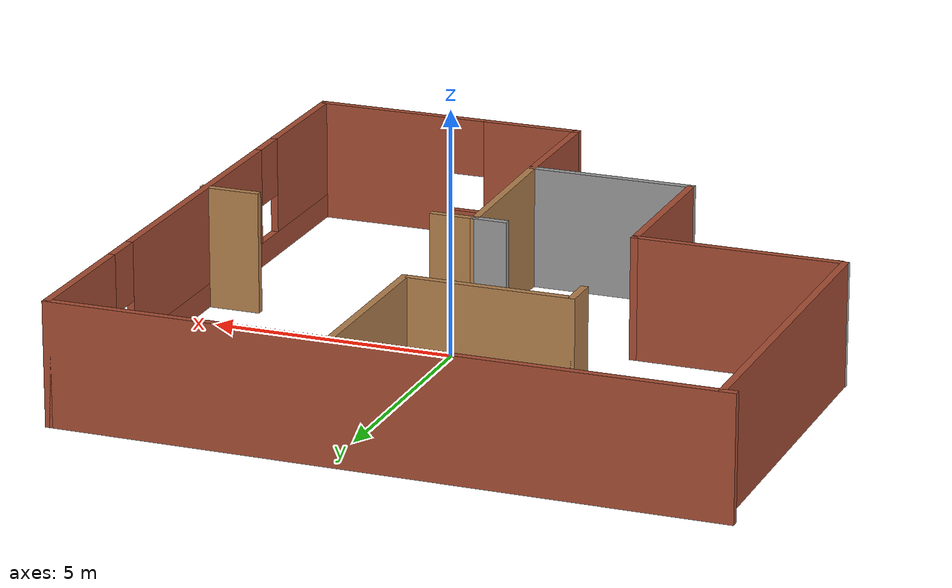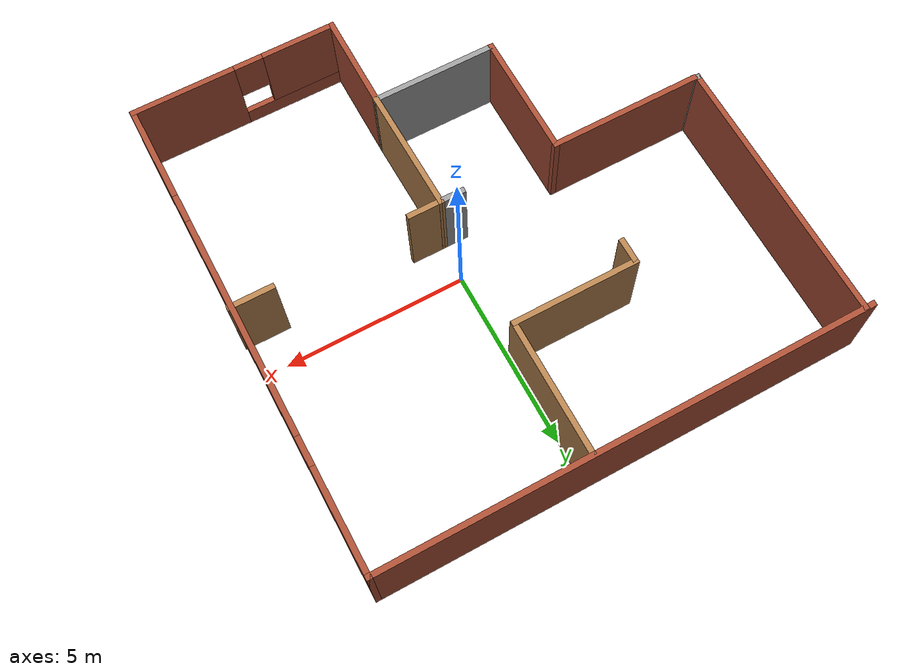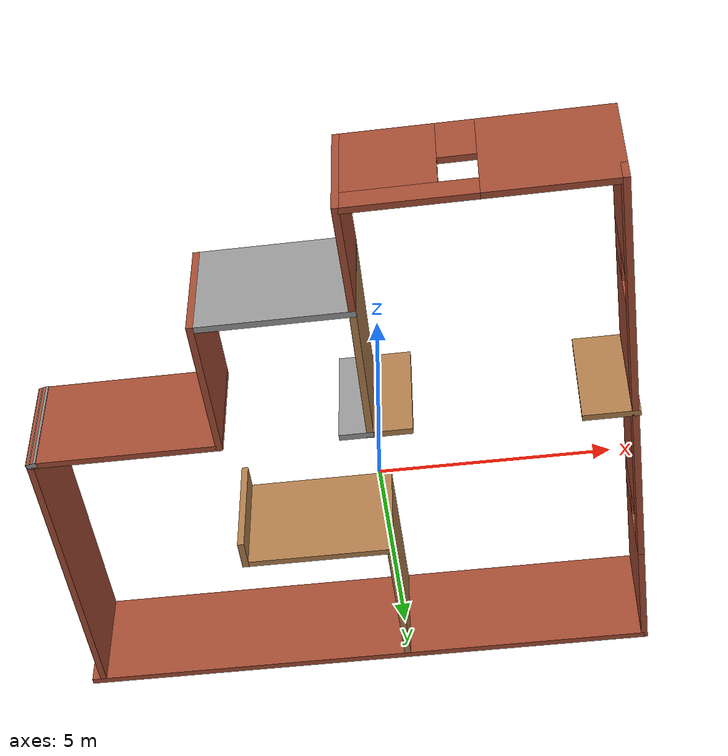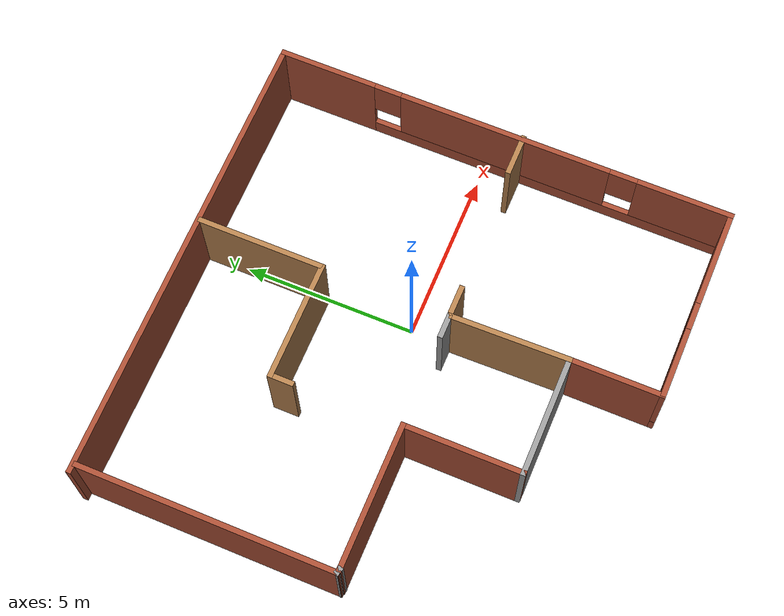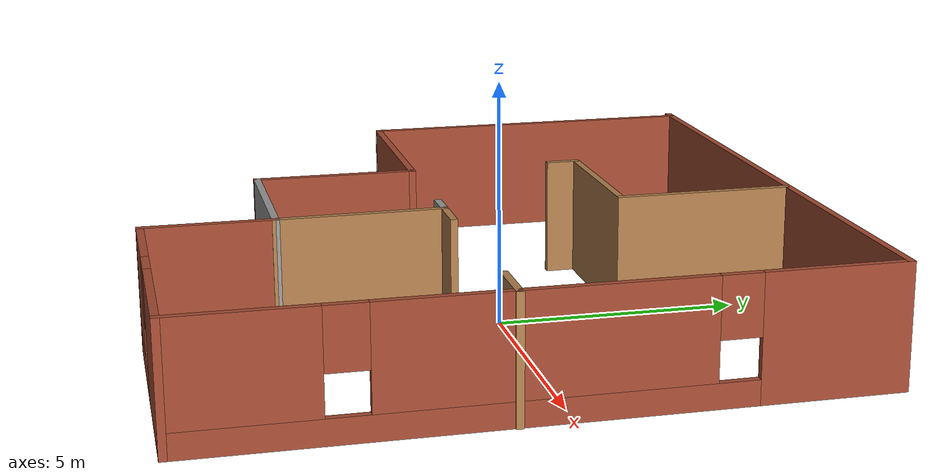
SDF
<?xml version='1.0'?>
<sdf version='1.6'>
  <model name='building'>
    <pose frame=''>-1.0593 -0.419655 0 0 -0 0</pose>
    <link name='Wall_0'>
      <collision name='Wall_0_Collision'>
        <geometry>
          <box>
            <size>13.5 0.15 2.5</size>
          </box>
        </geometry>
        <pose frame=''>0 0 1.25 0 -0 0</pose>
      </collision>
      <visual name='Wall_0_Visual'>
        <pose frame=''>0 0 1.25 0 -0 0</pose>
        <geometry>
          <box>
            <size>13.5 0.15 2.5</size>
          </box>
        </geometry>
        <material>
          <script>
            <uri>file://media/materials/scripts/gazebo.material</uri>
            <name>Gazebo/Bricks</name>
          </script>
          <ambient>1 1 1 1</ambient>
        </material>
        <meta>
          <layer>0</layer>
        </meta>
      </visual>
      <pose frame=''>-0.019646 6.675 0 0 -0 0</pose>
    </link>
    <link name='Wall_1'>
      <pose frame=''>6.65535 0 0 0 -0 -1.5708</pose>
      <visual name='Wall_1_Visual_0'>
        <pose frame=''>-5.30319 0 1.25 0 -0 0</pose>
        <geometry>
          <box>
            <size>2.89362 0.15 2.5</size>
          </box>
        </geometry>
        <material>
          <script>
            <uri>file://media/materials/scripts/gazebo.material</uri>
            <name>Gazebo/Bricks</name>
          </script>
          <ambient>1 1 1 1</ambient>
        </material>
        <meta>
          <layer>0</layer>
        </meta>
      </visual>
      <collision name='Wall_1_Collision_0'>
        <geometry>
          <box>
            <size>2.89362 0.15 2.5</size>
          </box>
        </geometry>
        <pose frame=''>-5.30319 0 1.25 0 -0 0</pose>
      </collision>
      <visual name='Wall_1_Visual_1'>
        <pose frame=''>1.44681 0 0.25 0 -0 0</pose>
        <geometry>
          <box>
            <size>10.6064 0.15 0.5</size>
          </box>
        </geometry>
        <material>
          <script>
            <uri>file://media/materials/scripts/gazebo.material</uri>
            <name>Gazebo/Bricks</name>
          </script>
          <ambient>1 1 1 1</ambient>
        </material>
        <meta>
          <layer>0</layer>
        </meta>
      </visual>
      <collision name='Wall_1_Collision_1'>
        <geometry>
          <box>
            <size>10.6064 0.15 0.5</size>
          </box>
        </geometry>
        <pose frame=''>1.44681 0 0.25 0 -0 0</pose>
      </collision>
      <visual name='Wall_1_Visual_2'>
        <pose frame=''>0.05485 0 1.5 0 -0 0</pose>
        <geometry>
          <box>
            <size>6.22245 0.15 2</size>
          </box>
        </geometry>
        <material>
          <script>
            <uri>file://media/materials/scripts/gazebo.material</uri>
            <name>Gazebo/Bricks</name>
          </script>
          <ambient>1 1 1 1</ambient>
        </material>
        <meta>
          <layer>0</layer>
        </meta>
      </visual>
      <collision name='Wall_1_Collision_2'>
        <geometry>
          <box>
            <size>6.22245 0.15 2</size>
          </box>
        </geometry>
        <pose frame=''>0.05485 0 1.5 0 -0 0</pose>
      </collision>
      <visual name='Wall_1_Visual_3'>
        <pose frame=''>5.35804 0 1.5 0 -0 0</pose>
        <geometry>
          <box>
            <size>2.78392 0.15 2</size>
          </box>
        </geometry>
        <material>
          <script>
            <uri>file://media/materials/scripts/gazebo.material</uri>
            <name>Gazebo/Bricks</name>
          </script>
          <ambient>1 1 1 1</ambient>
        </material>
        <meta>
          <layer>0</layer>
        </meta>
      </visual>
      <collision name='Wall_1_Collision_3'>
        <geometry>
          <box>
            <size>2.78392 0.15 2</size>
          </box>
        </geometry>
        <pose frame=''>5.35804 0 1.5 0 -0 0</pose>
      </collision>
      <visual name='Wall_1_Visual_4'>
        <pose frame=''>-3.45638 0 1.9 0 -0 0</pose>
        <geometry>
          <box>
            <size>0.8 0.15 1.2</size>
          </box>
        </geometry>
        <material>
          <script>
            <uri>file://media/materials/scripts/gazebo.material</uri>
            <name>Gazebo/Bricks</name>
          </script>
          <ambient>1 1 1 1</ambient>
        </material>
        <meta>
          <layer>0</layer>
        </meta>
      </visual>
      <collision name='Wall_1_Collision_4'>
        <geometry>
          <box>
            <size>0.8 0.15 1.2</size>
          </box>
        </geometry>
        <pose frame=''>-3.45638 0 1.9 0 -0 0</pose>
      </collision>
      <visual name='Wall_1_Visual_5'>
        <pose frame=''>3.56608 0 1.9 0 -0 0</pose>
        <geometry>
          <box>
            <size>0.8 0.15 1.2</size>
          </box>
        </geometry>
        <material>
          <script>
            <uri>file://media/materials/scripts/gazebo.material</uri>
            <name>Gazebo/Bricks</name>
          </script>
          <ambient>1 1 1 1</ambient>
        </material>
        <meta>
          <layer>0</layer>
        </meta>
      </visual>
      <collision name='Wall_1_Collision_5'>
        <geometry>
          <box>
            <size>0.8 0.15 1.2</size>
          </box>
        </geometry>
        <pose frame=''>3.56608 0 1.9 0 -0 0</pose>
      </collision>
    </link>
    <link name='Wall_10'>
      <collision name='Wall_10_Collision'>
        <geometry>
          <box>
            <size>3.75 0.15 2.5</size>
          </box>
        </geometry>
        <pose frame=''>0 0 1.25 0 -0 0</pose>
      </collision>
      <visual name='Wall_10_Visual'>
        <pose frame=''>0 0 1.25 0 -0 0</pose>
        <geometry>
          <box>
            <size>3.75 0.15 2.5</size>
          </box>
        </geometry>
        <material>
          <script>
            <uri>file://media/materials/scripts/gazebo.material</uri>
            <name>Gazebo/Wood</name>
          </script>
          <ambient>0.435294 0.796078 0.67451 1</ambient>
        </material>
        <meta>
          <layer>0</layer>
        </meta>
      </visual>
      <pose frame=''>0.992812 4.80417 0 0 -0 1.5708</pose>
    </link>
    <link name='Wall_12'>
      <collision name='Wall_12_Collision'>
        <geometry>
          <box>
            <size>1 0.15 2.5</size>
          </box>
        </geometry>
        <pose frame=''>0 0 1.25 0 -0 0</pose>
      </collision>
      <visual name='Wall_12_Visual'>
        <pose frame=''>0 0 1.25 0 -0 0</pose>
        <geometry>
          <box>
            <size>1 0.15 2.5</size>
          </box>
        </geometry>
        <material>
          <script>
            <uri>file://media/materials/scripts/gazebo.material</uri>
            <name>Gazebo/Wood</name>
          </script>
          <ambient>1 1 1 1</ambient>
        </material>
        <meta>
          <layer>0</layer>
        </meta>
      </visual>
      <pose frame=''>1.41781 -0.693255 0 0 -0 0</pose>
    </link>
    <link name='Wall_14'>
      <collision name='Wall_14_Collision'>
        <geometry>
          <box>
            <size>1.25 0.15 2.5</size>
          </box>
        </geometry>
        <pose frame=''>0 0 1.25 0 -0 0</pose>
      </collision>
      <visual name='Wall_14_Visual'>
        <pose frame=''>0 0 1.25 0 -0 0</pose>
        <geometry>
          <box>
            <size>1.25 0.15 2.5</size>
          </box>
        </geometry>
        <material>
          <script>
            <uri>file://media/materials/scripts/gazebo.material</uri>
            <name>Gazebo/Wood</name>
          </script>
          <ambient>1 1 1 1</ambient>
        </material>
        <meta>
          <layer>0</layer>
        </meta>
      </visual>
      <pose frame=''>6.14465 -0.586854 0 0 -0 0</pose>
    </link>
    <link name='Wall_16'>
      <collision name='Wall_16_Collision'>
        <geometry>
          <box>
            <size>0.75 0.15 2.5</size>
          </box>
        </geometry>
        <pose frame=''>0 0 1.25 0 -0 0</pose>
      </collision>
      <visual name='Wall_16_Visual'>
        <pose frame=''>0 0 1.25 0 -0 0</pose>
        <geometry>
          <box>
            <size>0.75 0.15 2.5</size>
          </box>
        </geometry>
        <material>
          <script>
            <uri>file://media/materials/scripts/gazebo.material</uri>
            <name>Gazebo/Grey</name>
          </script>
          <ambient>1 1 1 1</ambient>
        </material>
        <meta>
          <layer>0</layer>
        </meta>
      </visual>
      <pose frame=''>0.692812 -0.693255 0 0 -0 3.14159</pose>
    </link>
    <link name='Wall_18'>
      <collision name='Wall_18_Collision'>
        <geometry>
          <box>
            <size>3.5 0.15 2.5</size>
          </box>
        </geometry>
        <pose frame=''>0 0 1.25 0 -0 0</pose>
      </collision>
      <visual name='Wall_18_Visual'>
        <pose frame=''>0 0 1.25 0 -0 0</pose>
        <geometry>
          <box>
            <size>3.5 0.15 2.5</size>
          </box>
        </geometry>
        <material>
          <script>
            <uri>file://media/materials/scripts/gazebo.material</uri>
            <name>Gazebo/Wood</name>
          </script>
          <ambient>0.435294 0.796078 0.67451 1</ambient>
        </material>
        <meta>
          <layer>0</layer>
        </meta>
      </visual>
      <pose frame=''>-0.682188 3.00417 0 0 -0 3.14159</pose>
    </link>
    <link name='Wall_19'>
      <collision name='Wall_19_Collision'>
        <geometry>
          <box>
            <size>0.75 0.15 2.5</size>
          </box>
        </geometry>
        <pose frame=''>0 0 1.25 0 -0 0</pose>
      </collision>
      <visual name='Wall_19_Visual'>
        <pose frame=''>0 0 1.25 0 -0 0</pose>
        <geometry>
          <box>
            <size>0.75 0.15 2.5</size>
          </box>
        </geometry>
        <material>
          <script>
            <uri>file://media/materials/scripts/gazebo.material</uri>
            <name>Gazebo/Wood</name>
          </script>
          <ambient>1 1 1 1</ambient>
        </material>
        <meta>
          <layer>0</layer>
        </meta>
      </visual>
      <pose frame=''>-2.35719 2.70417 0 0 -0 -1.5708</pose>
    </link>
    <link name='Wall_2'>
      <pose frame=''>3.85535 -6.675 0 0 -0 3.14159</pose>
      <visual name='Wall_2_Visual_0'>
        <pose frame=''>-1.44314 0 1.25 0 -0 0</pose>
        <geometry>
          <box>
            <size>2.86372 0.15 2.5</size>
          </box>
        </geometry>
        <material>
          <script>
            <uri>file://media/materials/scripts/gazebo.material</uri>
            <name>Gazebo/Bricks</name>
          </script>
          <ambient>1 1 1 1</ambient>
        </material>
        <meta>
          <layer>0</layer>
        </meta>
      </visual>
      <collision name='Wall_2_Collision_0'>
        <geometry>
          <box>
            <size>2.86372 0.15 2.5</size>
          </box>
        </geometry>
        <pose frame=''>-1.44314 0 1.25 0 -0 0</pose>
      </collision>
      <visual name='Wall_2_Visual_1'>
        <pose frame=''>1.43186 0 0.25 0 -0 0</pose>
        <geometry>
          <box>
            <size>2.88628 0.15 0.5</size>
          </box>
        </geometry>
        <material>
          <script>
            <uri>file://media/materials/scripts/gazebo.material</uri>
            <name>Gazebo/Bricks</name>
          </script>
          <ambient>1 1 1 1</ambient>
        </material>
        <meta>
          <layer>0</layer>
        </meta>
      </visual>
      <collision name='Wall_2_Collision_1'>
        <geometry>
          <box>
            <size>2.88628 0.15 0.5</size>
          </box>
        </geometry>
        <pose frame=''>1.43186 0 0.25 0 -0 0</pose>
      </collision>
      <visual name='Wall_2_Visual_2'>
        <pose frame=''>1.83186 0 1.5 0 -0 0</pose>
        <geometry>
          <box>
            <size>2.08628 0.15 2</size>
          </box>
        </geometry>
        <material>
          <script>
            <uri>file://media/materials/scripts/gazebo.material</uri>
            <name>Gazebo/Bricks</name>
          </script>
          <ambient>1 1 1 1</ambient>
        </material>
        <meta>
          <layer>0</layer>
        </meta>
      </visual>
      <collision name='Wall_2_Collision_2'>
        <geometry>
          <box>
            <size>2.08628 0.15 2</size>
          </box>
        </geometry>
        <pose frame=''>1.83186 0 1.5 0 -0 0</pose>
      </collision>
      <visual name='Wall_2_Visual_3'>
        <pose frame=''>0.388724 0 1.9 0 -0 0</pose>
        <geometry>
          <box>
            <size>0.8 0.15 1.2</size>
          </box>
        </geometry>
        <material>
          <script>
            <uri>file://media/materials/scripts/gazebo.material</uri>
            <name>Gazebo/Bricks</name>
          </script>
          <ambient>1 1 1 1</ambient>
        </material>
        <meta>
          <layer>0</layer>
        </meta>
      </visual>
      <collision name='Wall_2_Collision_3'>
        <geometry>
          <box>
            <size>0.8 0.15 1.2</size>
          </box>
        </geometry>
        <pose frame=''>0.388724 0 1.9 0 -0 0</pose>
      </collision>
    </link>
    <link name='Wall_21'>
      <collision name='Wall_21_Collision'>
        <geometry>
          <box>
            <size>3.53232 0.15 2.5</size>
          </box>
        </geometry>
        <pose frame=''>0 0 1.25 0 -0 0</pose>
      </collision>
      <visual name='Wall_21_Visual'>
        <pose frame=''>0 0 1.25 0 -0 0</pose>
        <geometry>
          <box>
            <size>3.53232 0.15 2.5</size>
          </box>
        </geometry>
        <material>
          <script>
            <uri>file://media/materials/scripts/gazebo.material</uri>
            <name>Gazebo/Wood</name>
          </script>
          <ambient>1 1 1 1</ambient>
        </material>
        <meta>
          <layer>0</layer>
        </meta>
      </visual>
      <pose frame=''>1.02408 -2.38413 0 0 -0 -1.5523</pose>
    </link>
    <link name='Wall_3'>
      <collision name='Wall_3_Collision'>
        <geometry>
          <box>
            <size>2.75 0.15 2.5</size>
          </box>
        </geometry>
        <pose frame=''>0 0 1.25 0 -0 0</pose>
      </collision>
      <visual name='Wall_3_Visual'>
        <pose frame=''>0 0 1.25 0 -0 0</pose>
        <geometry>
          <box>
            <size>2.75 0.15 2.5</size>
          </box>
        </geometry>
        <material>
          <script>
            <uri>file://media/materials/scripts/gazebo.material</uri>
            <name>Gazebo/Bricks</name>
          </script>
          <ambient>1 1 1 1</ambient>
        </material>
        <meta>
          <layer>0</layer>
        </meta>
      </visual>
      <pose frame=''>1.05535 -5.375 0 0 -0 1.5708</pose>
    </link>
    <link name='Wall_4'>
      <collision name='Wall_4_Collision'>
        <geometry>
          <box>
            <size>3.5 0.15 2.5</size>
          </box>
        </geometry>
        <pose frame=''>0 0 1.25 0 -0 0</pose>
      </collision>
      <visual name='Wall_4_Visual'>
        <pose frame=''>0 0 1.25 0 -0 0</pose>
        <geometry>
          <box>
            <size>3.5 0.15 2.5</size>
          </box>
        </geometry>
        <material>
          <script>
            <uri>file://media/materials/scripts/gazebo.material</uri>
            <name>Gazebo/Grey</name>
          </script>
          <ambient>1 1 1 1</ambient>
        </material>
        <meta>
          <layer>0</layer>
        </meta>
      </visual>
      <pose frame=''>-0.619646 -4.075 0 0 -0 3.14159</pose>
    </link>
    <link name='Wall_5'>
      <collision name='Wall_5_Collision'>
        <geometry>
          <box>
            <size>3.5 0.15 2.5</size>
          </box>
        </geometry>
        <pose frame=''>0 0 1.25 0 -0 0</pose>
      </collision>
      <visual name='Wall_5_Visual'>
        <pose frame=''>0 0 1.25 0 -0 0</pose>
        <geometry>
          <box>
            <size>3.5 0.15 2.5</size>
          </box>
        </geometry>
        <material>
          <script>
            <uri>file://media/materials/scripts/gazebo.material</uri>
            <name>Gazebo/Bricks</name>
          </script>
          <ambient>1 1 1 1</ambient>
        </material>
        <meta>
          <layer>0</layer>
        </meta>
      </visual>
      <pose frame=''>-2.29465 -2.4 0 0 -0 1.5708</pose>
    </link>
    <link name='Wall_6'>
      <collision name='Wall_6_Collision'>
        <geometry>
          <box>
            <size>4.25 0.15 2.5</size>
          </box>
        </geometry>
        <pose frame=''>0 0 1.25 0 -0 0</pose>
      </collision>
      <visual name='Wall_6_Visual'>
        <pose frame=''>0 0 1.25 0 -0 0</pose>
        <geometry>
          <box>
            <size>4.25 0.15 2.5</size>
          </box>
        </geometry>
        <material>
          <script>
            <uri>file://media/materials/scripts/gazebo.material</uri>
            <name>Gazebo/Bricks</name>
          </script>
          <ambient>1 1 1 1</ambient>
        </material>
        <meta>
          <layer>0</layer>
        </meta>
      </visual>
      <pose frame=''>-4.34465 -0.725 0 0 -0 3.14159</pose>
    </link>
    <link name='Wall_7'>
      <collision name='Wall_7_Collision'>
        <geometry>
          <box>
            <size>0.25 0.15 2.5</size>
          </box>
        </geometry>
        <pose frame=''>0 0 1.25 0 -0 0</pose>
      </collision>
      <visual name='Wall_7_Visual'>
        <pose frame=''>0 0 1.25 0 -0 0</pose>
        <geometry>
          <box>
            <size>0.25 0.15 2.5</size>
          </box>
        </geometry>
        <material>
          <script>
            <uri>file://media/materials/scripts/gazebo.material</uri>
            <name>Gazebo/Grey</name>
          </script>
          <ambient>1 1 1 1</ambient>
        </material>
        <meta>
          <layer>0</layer>
        </meta>
      </visual>
      <pose frame=''>-6.44294 -0.712059 0 0 -0 2.87979</pose>
    </link>
    <link name='Wall_8'>
      <collision name='Wall_8_Collision'>
        <geometry>
          <box>
            <size>7.5 0.15 2.5</size>
          </box>
        </geometry>
        <pose frame=''>0 0 1.25 0 -0 0</pose>
      </collision>
      <visual name='Wall_8_Visual'>
        <pose frame=''>0 0 1.25 0 -0 0</pose>
        <geometry>
          <box>
            <size>7.5 0.15 2.5</size>
          </box>
        </geometry>
        <material>
          <script>
            <uri>file://media/materials/scripts/gazebo.material</uri>
            <name>Gazebo/Bricks</name>
          </script>
          <ambient>1 1 1 1</ambient>
        </material>
        <meta>
          <layer>0</layer>
        </meta>
      </visual>
      <pose frame=''>-6.49124 2.97588 0 0 -0 1.5708</pose>
    </link>
    <static>1</static>
  </model>
</sdf>
